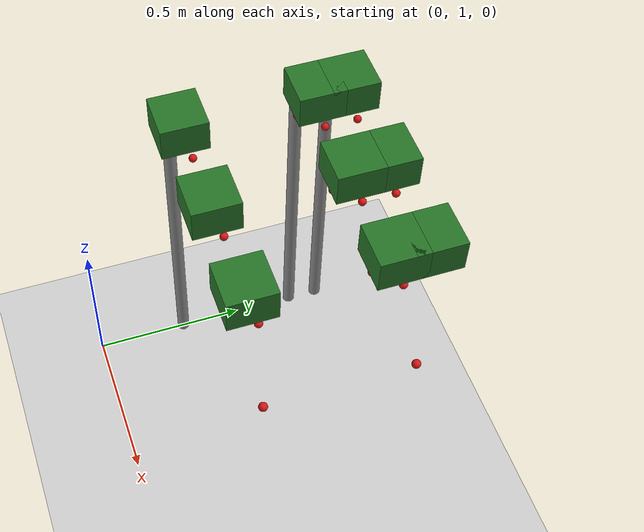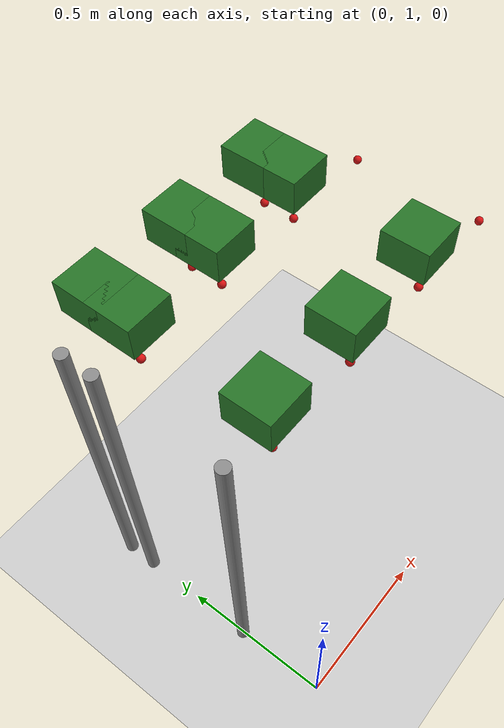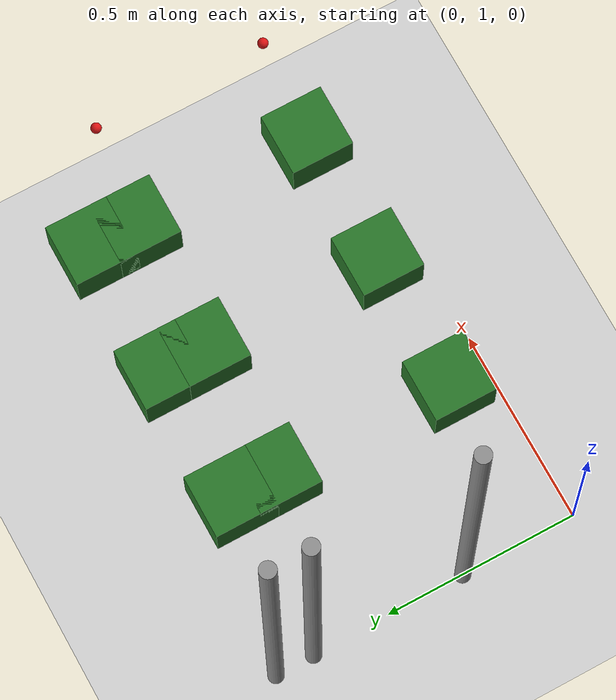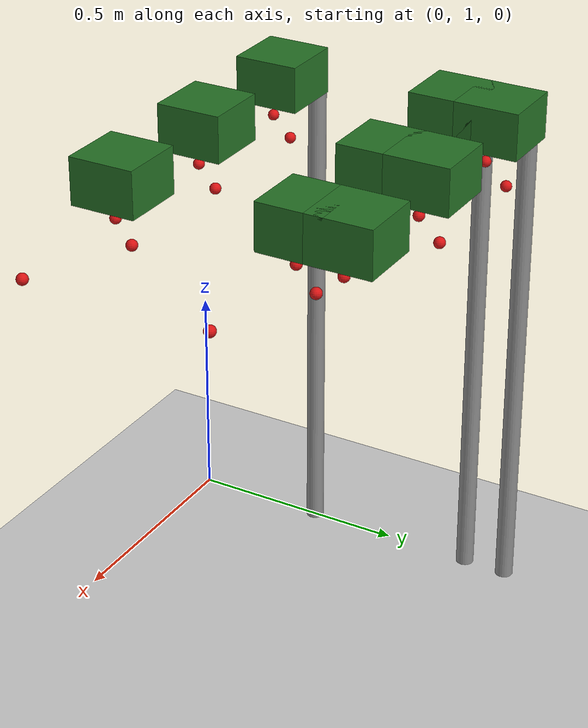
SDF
<sdf version="1.7">
 <world name="irish_polytunnel">
  <include><uri>model://sun</uri></include>
  <include><uri>model://ground_plane</uri></include>
  <model name="row3_L_post0">
   <static>true</static>
   <pose>0.000 1.700 0.550 0 0 0</pose>
   <link name="link">
    <collision name="collision">
     <geometry><cylinder><radius>0.02</radius><length>1.100</length></cylinder></geometry>
    </collision>
    <visual name="visual">
     <geometry><cylinder><radius>0.02</radius><length>1.100</length></cylinder></geometry>
     <material><ambient>0.5 0.5 0.5 1</ambient><diffuse>0.55 0.55 0.55 1</diffuse></material>
    </visual>
   </link>
  </model>
  <model name="row3_L_plant0_foliage">
   <static>true</static>
   <pose>0.150 1.700 1.180 0 0 0</pose>
   <link name="link">
    <visual name="visual">
     <geometry><box><size>0.14 0.14 0.10</size></box></geometry>
     <material><ambient>0.10 0.35 0.10 1</ambient><diffuse>0.15 0.45 0.15 1</diffuse></material>
    </visual>
   </link>
  </model>
  <model name="row3_L_plant0_berry_0">
   <static>true</static>
   <pose>0.120 1.660 1.070 0 0 0</pose>
   <link name="link">
    <visual name="visual">
     <geometry><sphere><radius>0.012</radius></sphere></geometry>
     <material><ambient>0.75 0.05 0.05 1</ambient><diffuse>0.85 0.08 0.08 1</diffuse></material>
    </visual>
   </link>
  </model>
  <model name="row3_L_plant0_berry_1">
   <static>true</static>
   <pose>0.170 1.730 1.050 0 0 0</pose>
   <link name="link">
    <visual name="visual">
     <geometry><sphere><radius>0.012</radius></sphere></geometry>
     <material><ambient>0.75 0.05 0.05 1</ambient><diffuse>0.85 0.08 0.08 1</diffuse></material>
    </visual>
   </link>
  </model>
  <model name="row3_L_plant1_foliage">
   <static>true</static>
   <pose>0.450 1.700 1.180 0 0 0</pose>
   <link name="link">
    <visual name="visual">
     <geometry><box><size>0.14 0.14 0.10</size></box></geometry>
     <material><ambient>0.10 0.35 0.10 1</ambient><diffuse>0.15 0.45 0.15 1</diffuse></material>
    </visual>
   </link>
  </model>
  <model name="row3_L_plant1_berry_0">
   <static>true</static>
   <pose>0.420 1.660 1.070 0 0 0</pose>
   <link name="link">
    <visual name="visual">
     <geometry><sphere><radius>0.012</radius></sphere></geometry>
     <material><ambient>0.75 0.05 0.05 1</ambient><diffuse>0.85 0.08 0.08 1</diffuse></material>
    </visual>
   </link>
  </model>
  <model name="row3_L_plant1_berry_1">
   <static>true</static>
   <pose>0.470 1.730 1.050 0 0 0</pose>
   <link name="link">
    <visual name="visual">
     <geometry><sphere><radius>0.012</radius></sphere></geometry>
     <material><ambient>0.75 0.05 0.05 1</ambient><diffuse>0.85 0.08 0.08 1</diffuse></material>
    </visual>
   </link>
  </model>
  <model name="row3_L_plant2_foliage">
   <static>true</static>
   <pose>0.750 1.700 1.180 0 0 0</pose>
   <link name="link">
    <visual name="visual">
     <geometry><box><size>0.14 0.14 0.10</size></box></geometry>
     <material><ambient>0.10 0.35 0.10 1</ambient><diffuse>0.15 0.45 0.15 1</diffuse></material>
    </visual>
   </link>
  </model>
  <model name="row3_L_plant2_berry_0">
   <static>true</static>
   <pose>0.720 1.660 1.070 0 0 0</pose>
   <link name="link">
    <visual name="visual">
     <geometry><sphere><radius>0.012</radius></sphere></geometry>
     <material><ambient>0.75 0.05 0.05 1</ambient><diffuse>0.85 0.08 0.08 1</diffuse></material>
    </visual>
   </link>
  </model>
  <model name="row3_L_plant2_berry_1">
   <static>true</static>
   <pose>0.770 1.730 1.050 0 0 0</pose>
   <link name="link">
    <visual name="visual">
     <geometry><sphere><radius>0.012</radius></sphere></geometry>
     <material><ambient>0.75 0.05 0.05 1</ambient><diffuse>0.85 0.08 0.08 1</diffuse></material>
    </visual>
   </link>
  </model>
  <model name="row3_L_plant3_berry_0">
   <static>true</static>
   <pose>1.020 1.660 1.070 0 0 0</pose>
   <link name="link">
    <visual name="visual">
     <geometry><sphere><radius>0.012</radius></sphere></geometry>
     <material><ambient>0.75 0.05 0.05 1</ambient><diffuse>0.85 0.08 0.08 1</diffuse></material>
    </visual>
   </link>
  </model>
  <model name="row3_R_post0">
   <static>true</static>
   <pose>0.000 1.300 0.550 0 0 0</pose>
   <link name="link">
    <collision name="collision">
     <geometry><cylinder><radius>0.02</radius><length>1.100</length></cylinder></geometry>
    </collision>
    <visual name="visual">
     <geometry><cylinder><radius>0.02</radius><length>1.100</length></cylinder></geometry>
     <material><ambient>0.5 0.5 0.5 1</ambient><diffuse>0.55 0.55 0.55 1</diffuse></material>
    </visual>
   </link>
  </model>
  <model name="row3_R_plant0_foliage">
   <static>true</static>
   <pose>0.150 1.300 1.180 0 0 0</pose>
   <link name="link">
    <visual name="visual">
     <geometry><box><size>0.14 0.14 0.10</size></box></geometry>
     <material><ambient>0.10 0.35 0.10 1</ambient><diffuse>0.15 0.45 0.15 1</diffuse></material>
    </visual>
   </link>
  </model>
  <model name="row3_R_plant0_berry_0">
   <static>true</static>
   <pose>0.120 1.260 1.070 0 0 0</pose>
   <link name="link">
    <visual name="visual">
     <geometry><sphere><radius>0.012</radius></sphere></geometry>
     <material><ambient>0.75 0.05 0.05 1</ambient><diffuse>0.85 0.08 0.08 1</diffuse></material>
    </visual>
   </link>
  </model>
  <model name="row3_R_plant0_berry_1">
   <static>true</static>
   <pose>0.170 1.330 1.050 0 0 0</pose>
   <link name="link">
    <visual name="visual">
     <geometry><sphere><radius>0.012</radius></sphere></geometry>
     <material><ambient>0.75 0.05 0.05 1</ambient><diffuse>0.85 0.08 0.08 1</diffuse></material>
    </visual>
   </link>
  </model>
  <model name="row3_R_plant1_foliage">
   <static>true</static>
   <pose>0.450 1.300 1.180 0 0 0</pose>
   <link name="link">
    <visual name="visual">
     <geometry><box><size>0.14 0.14 0.10</size></box></geometry>
     <material><ambient>0.10 0.35 0.10 1</ambient><diffuse>0.15 0.45 0.15 1</diffuse></material>
    </visual>
   </link>
  </model>
  <model name="row3_R_plant1_berry_0">
   <static>true</static>
   <pose>0.420 1.260 1.070 0 0 0</pose>
   <link name="link">
    <visual name="visual">
     <geometry><sphere><radius>0.012</radius></sphere></geometry>
     <material><ambient>0.75 0.05 0.05 1</ambient><diffuse>0.85 0.08 0.08 1</diffuse></material>
    </visual>
   </link>
  </model>
  <model name="row3_R_plant1_berry_1">
   <static>true</static>
   <pose>0.470 1.330 1.050 0 0 0</pose>
   <link name="link">
    <visual name="visual">
     <geometry><sphere><radius>0.012</radius></sphere></geometry>
     <material><ambient>0.75 0.05 0.05 1</ambient><diffuse>0.85 0.08 0.08 1</diffuse></material>
    </visual>
   </link>
  </model>
  <model name="row3_R_plant2_foliage">
   <static>true</static>
   <pose>0.750 1.300 1.180 0 0 0</pose>
   <link name="link">
    <visual name="visual">
     <geometry><box><size>0.14 0.14 0.10</size></box></geometry>
     <material><ambient>0.10 0.35 0.10 1</ambient><diffuse>0.15 0.45 0.15 1</diffuse></material>
    </visual>
   </link>
  </model>
  <model name="row3_R_plant2_berry_0">
   <static>true</static>
   <pose>0.720 1.260 1.070 0 0 0</pose>
   <link name="link">
    <visual name="visual">
     <geometry><sphere><radius>0.012</radius></sphere></geometry>
     <material><ambient>0.75 0.05 0.05 1</ambient><diffuse>0.85 0.08 0.08 1</diffuse></material>
    </visual>
   </link>
  </model>
  <model name="row3_R_plant2_berry_1">
   <static>true</static>
   <pose>0.770 1.330 1.050 0 0 0</pose>
   <link name="link">
    <visual name="visual">
     <geometry><sphere><radius>0.012</radius></sphere></geometry>
     <material><ambient>0.75 0.05 0.05 1</ambient><diffuse>0.85 0.08 0.08 1</diffuse></material>
    </visual>
   </link>
  </model>
  <model name="row3_R_plant3_berry_0">
   <static>true</static>
   <pose>1.020 1.260 1.070 0 0 0</pose>
   <link name="link">
    <visual name="visual">
     <geometry><sphere><radius>0.012</radius></sphere></geometry>
     <material><ambient>0.75 0.05 0.05 1</ambient><diffuse>0.85 0.08 0.08 1</diffuse></material>
    </visual>
   </link>
  </model>
  <model name="row4_R_post0">
   <static>true</static>
   <pose>0.000 1.800 0.550 0 0 0</pose>
   <link name="link">
    <collision name="collision">
     <geometry><cylinder><radius>0.02</radius><length>1.100</length></cylinder></geometry>
    </collision>
    <visual name="visual">
     <geometry><cylinder><radius>0.02</radius><length>1.100</length></cylinder></geometry>
     <material><ambient>0.5 0.5 0.5 1</ambient><diffuse>0.55 0.55 0.55 1</diffuse></material>
    </visual>
   </link>
  </model>
  <model name="row4_R_plant0_foliage">
   <static>true</static>
   <pose>0.150 1.800 1.180 0 0 0</pose>
   <link name="link">
    <visual name="visual">
     <geometry><box><size>0.14 0.14 0.10</size></box></geometry>
     <material><ambient>0.10 0.35 0.10 1</ambient><diffuse>0.15 0.45 0.15 1</diffuse></material>
    </visual>
   </link>
  </model>
  <model name="row4_R_plant0_berry_0">
   <static>true</static>
   <pose>0.120 1.760 1.070 0 0 0</pose>
   <link name="link">
    <visual name="visual">
     <geometry><sphere><radius>0.012</radius></sphere></geometry>
     <material><ambient>0.75 0.05 0.05 1</ambient><diffuse>0.85 0.08 0.08 1</diffuse></material>
    </visual>
   </link>
  </model>
  <model name="row4_R_plant0_berry_1">
   <static>true</static>
   <pose>0.170 1.830 1.050 0 0 0</pose>
   <link name="link">
    <visual name="visual">
     <geometry><sphere><radius>0.012</radius></sphere></geometry>
     <material><ambient>0.75 0.05 0.05 1</ambient><diffuse>0.85 0.08 0.08 1</diffuse></material>
    </visual>
   </link>
  </model>
  <model name="row4_R_plant1_foliage">
   <static>true</static>
   <pose>0.450 1.800 1.180 0 0 0</pose>
   <link name="link">
    <visual name="visual">
     <geometry><box><size>0.14 0.14 0.10</size></box></geometry>
     <material><ambient>0.10 0.35 0.10 1</ambient><diffuse>0.15 0.45 0.15 1</diffuse></material>
    </visual>
   </link>
  </model>
  <model name="row4_R_plant1_berry_0">
   <static>true</static>
   <pose>0.420 1.760 1.070 0 0 0</pose>
   <link name="link">
    <visual name="visual">
     <geometry><sphere><radius>0.012</radius></sphere></geometry>
     <material><ambient>0.75 0.05 0.05 1</ambient><diffuse>0.85 0.08 0.08 1</diffuse></material>
    </visual>
   </link>
  </model>
  <model name="row4_R_plant1_berry_1">
   <static>true</static>
   <pose>0.470 1.830 1.050 0 0 0</pose>
   <link name="link">
    <visual name="visual">
     <geometry><sphere><radius>0.012</radius></sphere></geometry>
     <material><ambient>0.75 0.05 0.05 1</ambient><diffuse>0.85 0.08 0.08 1</diffuse></material>
    </visual>
   </link>
  </model>
  <model name="row4_R_plant2_foliage">
   <static>true</static>
   <pose>0.750 1.800 1.180 0 0 0</pose>
   <link name="link">
    <visual name="visual">
     <geometry><box><size>0.14 0.14 0.10</size></box></geometry>
     <material><ambient>0.10 0.35 0.10 1</ambient><diffuse>0.15 0.45 0.15 1</diffuse></material>
    </visual>
   </link>
  </model>
  <model name="row4_R_plant2_berry_0">
   <static>true</static>
   <pose>0.720 1.760 1.070 0 0 0</pose>
   <link name="link">
    <visual name="visual">
     <geometry><sphere><radius>0.012</radius></sphere></geometry>
     <material><ambient>0.75 0.05 0.05 1</ambient><diffuse>0.85 0.08 0.08 1</diffuse></material>
    </visual>
   </link>
  </model>
 </world>
</sdf>
